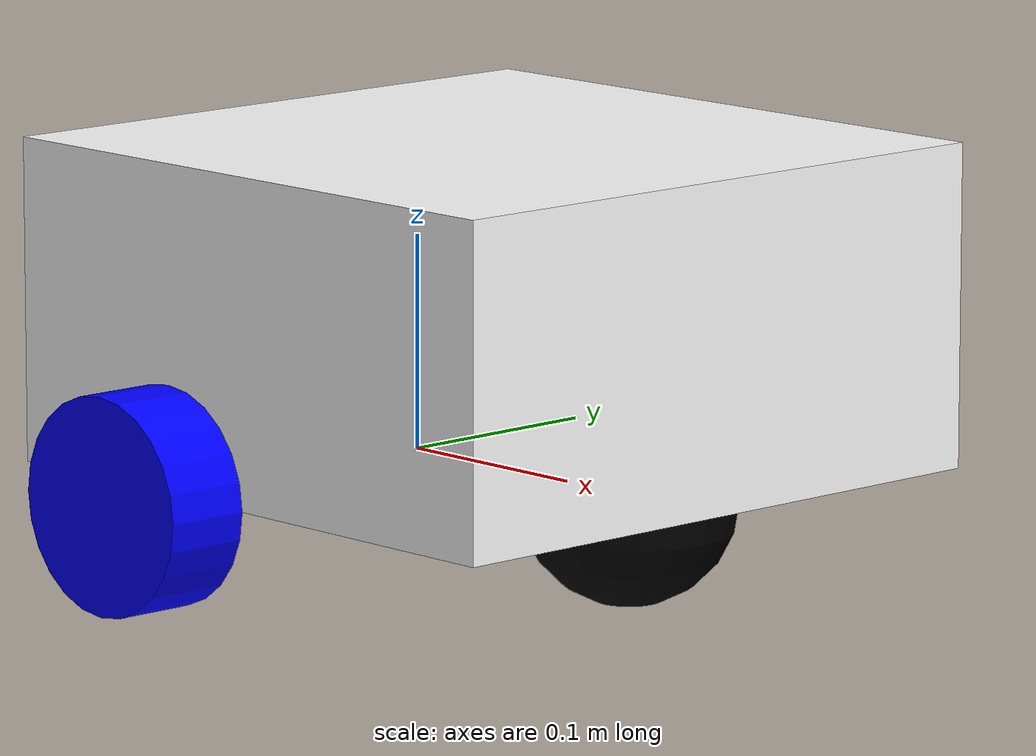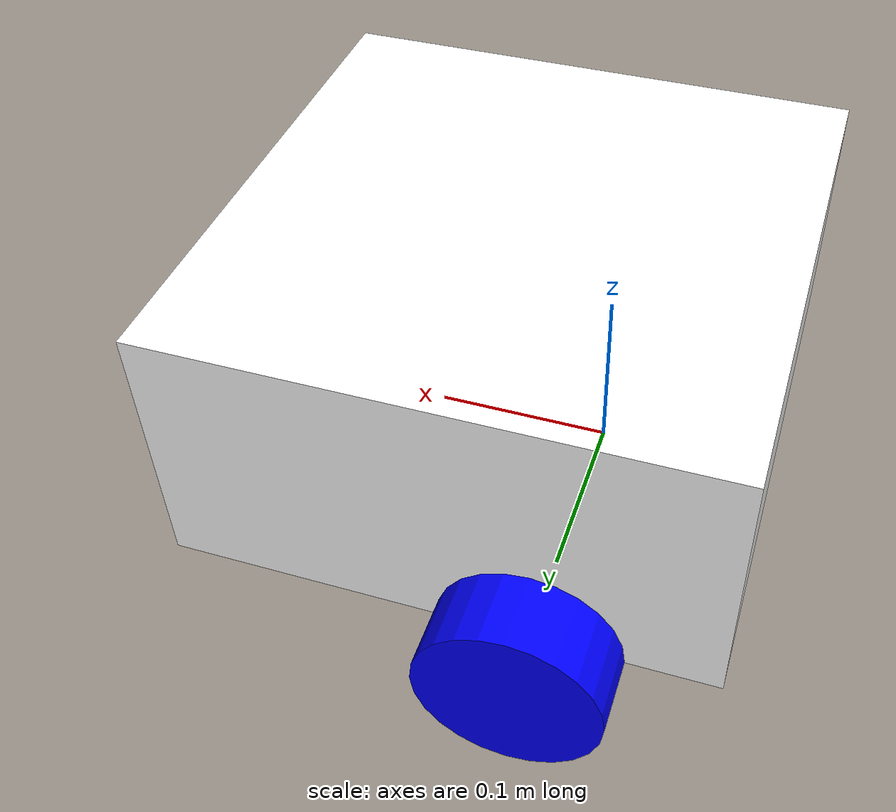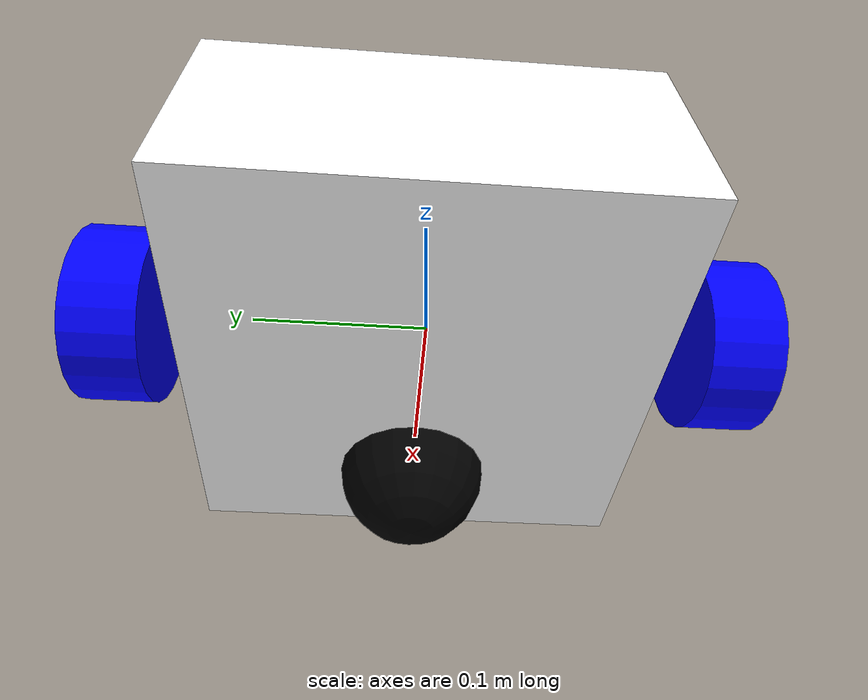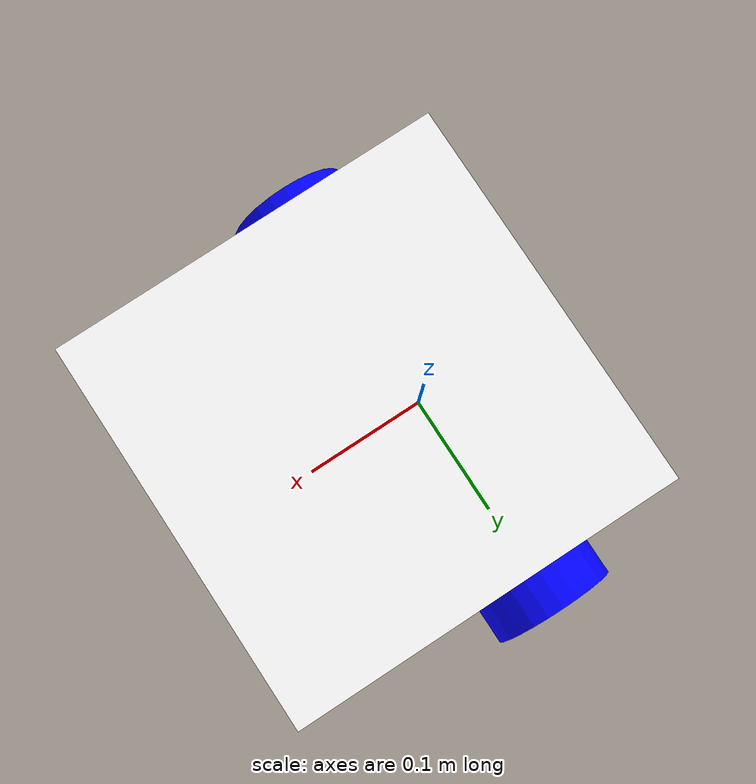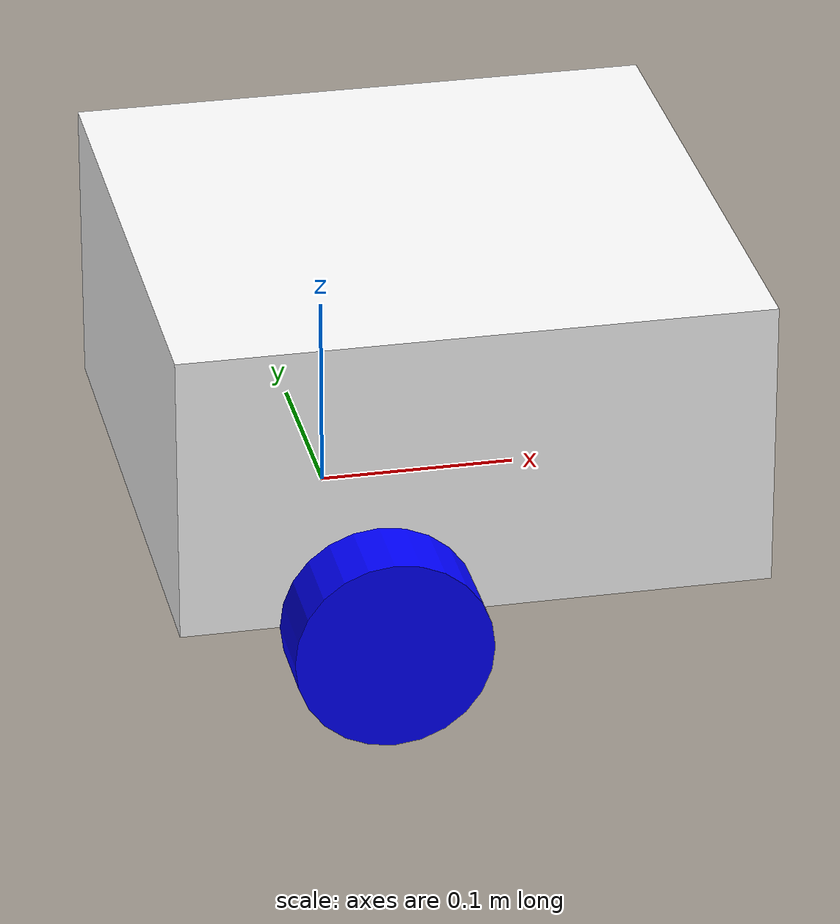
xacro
<?xml version="1.0"?>
<robot xmlns:xacro="http://www.ros.org/wiki/xacro">
<xacro:include filename="intertial_macros.xacro" />

    <material name="white">
        <color rgba="1 1 1 1"/>
    </material>

    <material name="orange">
        <color rgba="1 0.5 0 1"/>
    </material>

    <material name="black">
        <color rgba="0 0 0 1"/>
    </material>

    <material name="blue">
        <color rgba="0 0 1 1"/>
    </material>

<!--    base_link   -->
    <link name="base_link">
    </link>

<!--    chassis_link   -->
    <joint name="chassis_joint" type="fixed">
        <parent link="base_link"/>
        <child link="chassis_link"/>
        <origin xyz="-0.1 0 0"/>
    </joint>

    <link name="chassis_link">
    <visual>
    <origin xyz="0.15 0 0.075"/>

        <geometry>
            <box size="0.3 0.3 0.15"/>
        </geometry>
        <material name="white"/>
    </visual>
    <collision>
       <origin xyz="0.15 0 0.075"/>

        <geometry>
            <box size="0.3 0.3 0.15"/>
        </geometry>
    </collision>
    <xacro:inertial_box mass="1.0" x="0.3" y="0.3" z="0.15">
        <origin xyz="0.15 0 0.075"/>
    </xacro:inertial_box>

    </link>

    <!-- left_wheel_link   -->
    <joint name="left_wheel_joint" type="continuous">
        <parent link="base_link"/>
        <child link="left_wheel_link"/>
        <origin xyz="0 0.17 0" rpy="-${pi/2} 0 0"/>
        <axis xyz="0 0 1"/>
    </joint>
    <link name="left_wheel_link">
    <visual>
        <geometry>
            <cylinder radius="0.05" length="0.04"/>
        </geometry>
        <material name="blue"/>
    </visual>
    <collision>
        <geometry>
            <cylinder radius="0.05" length="0.04"/>
        </geometry>

    </collision>
    <xacro:inertial_cylinder mass="0.1" length="0.04" radius="0.05">
        <origin xyz="0 0 0"/>
    </xacro:inertial_cylinder>
    </link>

    <!-- right_wheel_link   -->
    <joint name="right_wheel_joint" type="continuous">
        <parent link="base_link"/>
        <child link="right_wheel_link"/>
        <origin xyz="0 -0.17 0" rpy="${pi/2} 0 0"/>
        <axis xyz="0 0 -1"/>
    </joint>
     <link name="right_wheel_link">
    <visual>
        <geometry>
            <cylinder radius="0.05" length="0.04"/>
        </geometry>
        <material name="blue"/>
    </visual>
    <collision>
        <geometry>
            <cylinder radius="0.05" length="0.04"/>
        </geometry>
        <material name="blue"/>

    </collision>
    <xacro:inertial_cylinder mass="0.1" length="0.04" radius="0.05">
        <origin xyz="0 0 0"/>
    </xacro:inertial_cylinder>
    </link>

    <!-- caster_wheel_link   -->
    <joint name="caster_wheel_joint" type="fixed">   <!-- should be on the vorher und weil das Chasis link am Unten liegt wegen dessen Joint  -->
        <parent link="chassis_link"/>
        <child link="caster_wheel_link"/>
        <origin xyz="0.24 0 0"/>
    </joint>
    <link name="caster_wheel_link">
    <visual>
        <geometry>
            <sphere radius="0.05"/>
        </geometry>
        <material name="black"/>
    </visual>
    <collision>
        <geometry>
            <cylinder radius="0.05" length="0.04"/>
        </geometry>
    </collision>
    <xacro:inertial_sphere mass="0.1" radius="0.05">
        <origin xyz="0 0 0"/>
    </xacro:inertial_sphere>
    </link>
    <gazebo reference="caster_wheel_link">
        <material>Gazebo/Black</material>
        <mu1>0.001</mu1>
        <mu2>0.001</mu2>

    </gazebo>

</robot>

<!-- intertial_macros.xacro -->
<robot xmlns:xacro="http://www.ros.org/wiki/xacro" >

    <xacro:macro name="inertial_sphere" params="mass radius *origin">
        <inertial>
            <xacro:insert_block name="origin"/>
            <mass value="${mass}" />
            <inertia ixx="${(2/5) * mass * (radius*radius)}" ixy="0.0" ixz="0.0"
                    iyy="${(2/5) * mass * (radius*radius)}" iyz="0.0"
                    izz="${(2/5) * mass * (radius*radius)}" />
        </inertial>
    </xacro:macro>

    <xacro:macro name="inertial_box" params="mass x y z *origin">
        <inertial>
            <xacro:insert_block name="origin"/>
            <mass value="${mass}" />
            <inertia ixx="${(1/12) * mass * (y*y+z*z)}" ixy="0.0" ixz="0.0"
                    iyy="${(1/12) * mass * (x*x+z*z)}" iyz="0.0"
                    izz="${(1/12) * mass * (x*x+y*y)}" />
        </inertial>
    </xacro:macro>

    <xacro:macro name="inertial_cylinder" params="mass length radius *origin">
        <inertial>
            <xacro:insert_block name="origin"/>
            <mass value="${mass}" />
            <inertia ixx="${(1/12) * mass * (3*radius*radius + length*length)}" ixy="0.0" ixz="0.0"
                    iyy="${(1/12) * mass * (3*radius*radius + length*length)}" iyz="0.0"
                    izz="${(1/2) * mass * (radius*radius)}" />
        </inertial>
    </xacro:macro>

</robot>
